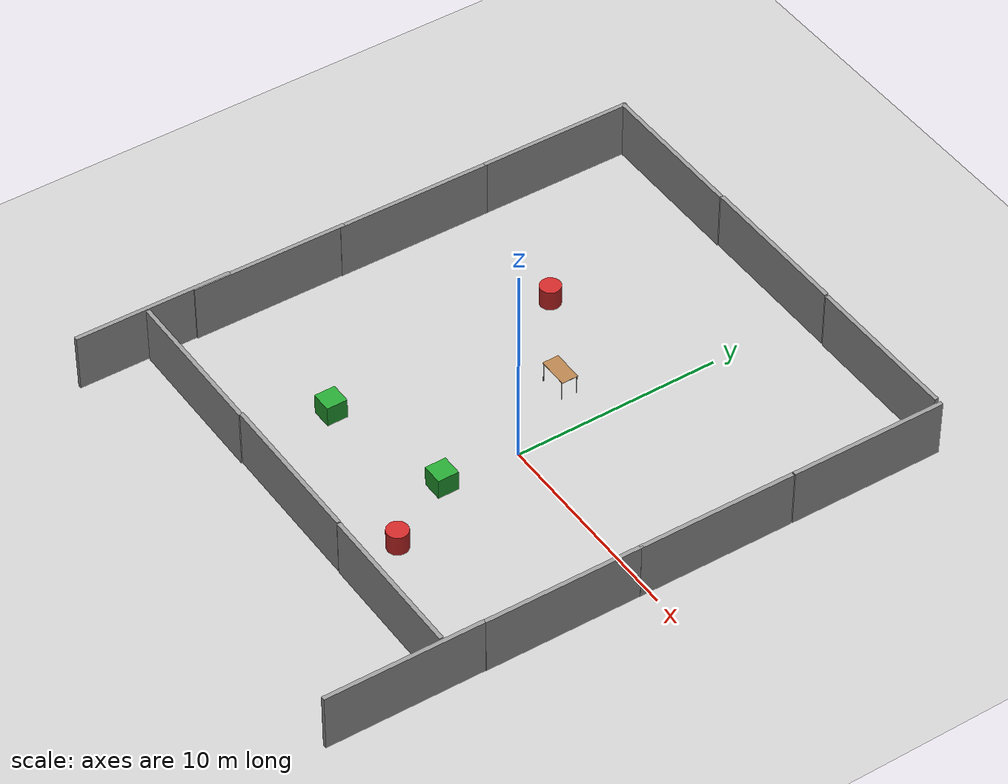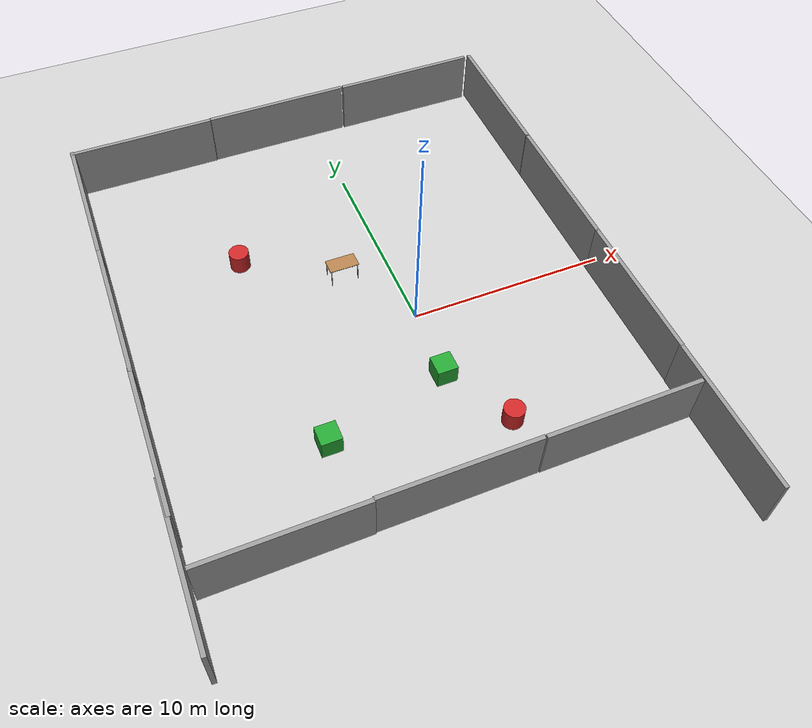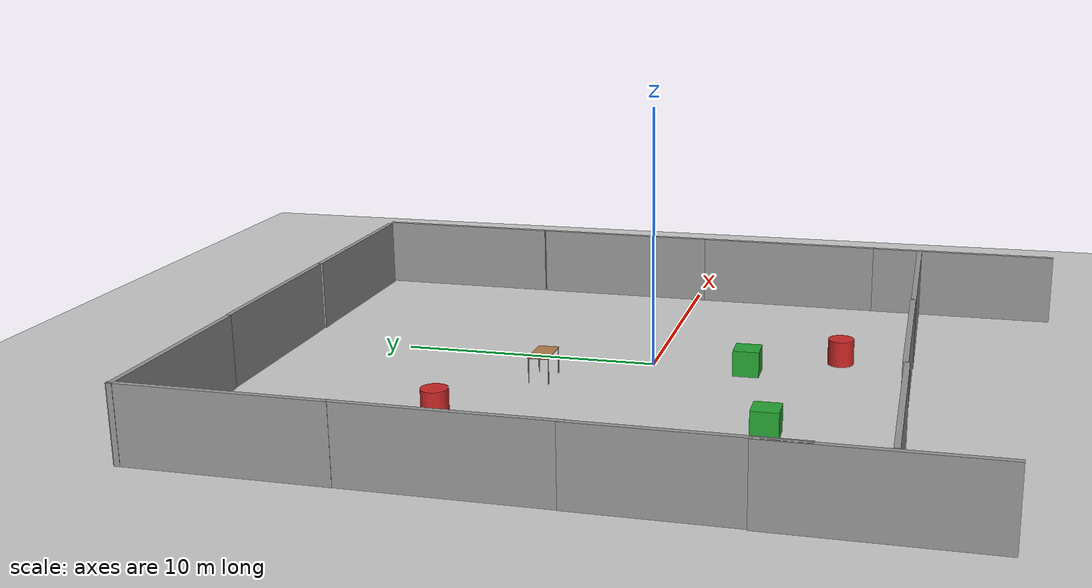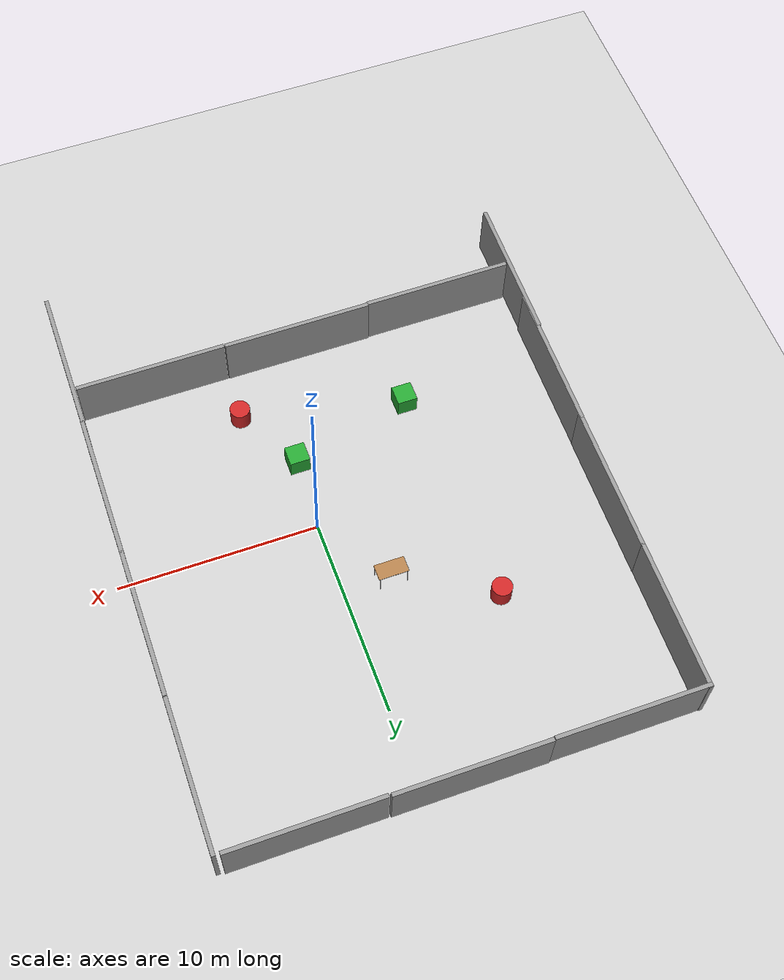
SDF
<sdf version="1.7">
 <world name="default">
  <light name="sun" type="directional">
   <pose>0 0 10 0 -0 0</pose>
   <diffuse>0.8 0.8 0.8 1</diffuse>
   <specular>0.2 0.2 0.2 1</specular>
   <attenuation>
    <range>1000</range>
    <constant>0.9</constant>
    <linear>0.01</linear>
    <quadratic>0.001</quadratic>
   </attenuation>
   <direction>-0.5 0.1 -0.9</direction>
   <spot><inner_angle>0</inner_angle><outer_angle>0</outer_angle><falloff>0</falloff></spot>
  </light>
  <model name="ground_plane">
   <static>1</static>
   <link name="link">
    <collision name="collision">
     <geometry><plane><normal>0 0 1</normal><size>100 100</size></plane></geometry>
     <surface><friction><ode><mu>100</mu><mu2>50</mu2></ode></friction></surface>
    </collision>
    <visual name="visual">
     <cast_shadows>0</cast_shadows>
     <geometry><plane><normal>0 0 1</normal><size>100 100</size></plane></geometry>
     <material>
      <script><uri>file://media/materials/scripts/gazebo.material</uri><name>Gazebo/Grey</name></script>
     </material>
    </visual>
   </link>
  </model>
  <gravity>0 0 -9.8</gravity>
  <magnetic_field>6e-06 2.3e-05 -4.2e-05</magnetic_field>
  <atmosphere type="adiabatic"/>
  <physics type="ode">
   <max_step_size>0.001</max_step_size>
   <real_time_factor>1</real_time_factor>
   <real_time_update_rate>1000</real_time_update_rate>
  </physics>
  <scene><ambient>0.4 0.4 0.4 1</ambient><background>0.7 0.7 0.7 1</background><shadows>1</shadows></scene>
  <model name="unit_box">
   <pose>-6.35708 -5.20828 0.499995 0 1e-05 0</pose>
   <link name="link">
    <inertial>
     <mass>1</mass>
     <inertia>
      <ixx>0.166667</ixx>
      <ixy>0</ixy>
      <ixz>0</ixz>
      <iyy>0.166667</iyy>
      <iyz>0</iyz>
      <izz>0.166667</izz>
     </inertia>
    </inertial>
    <collision name="collision"><geometry><box><size>1 1 1</size></box></geometry></collision>
    <visual name="visual">
     <geometry><box><size>1 1 1</size></box></geometry>
     <material>
      <script><name>Gazebo/Green</name><uri>file://media/materials/scripts/gazebo.material</uri></script>
     </material>
    </visual>
   </link>
  </model>
  <model name="unit_box_0">
   <pose>-0.213584 -3.67443 0.499995 0 1e-05 0</pose>
   <link name="link">
    <inertial>
     <mass>1</mass>
     <inertia>
      <ixx>0.166667</ixx>
      <ixy>0</ixy>
      <ixz>0</ixz>
      <iyy>0.166667</iyy>
      <iyz>0</iyz>
      <izz>0.166667</izz>
     </inertia>
    </inertial>
    <collision name="collision"><geometry><box><size>1 1 1</size></box></geometry></collision>
    <visual name="visual">
     <geometry><box><size>1 1 1</size></box></geometry>
     <material>
      <script><name>Gazebo/Green</name><uri>file://media/materials/scripts/gazebo.material</uri></script>
     </material>
    </visual>
   </link>
  </model>
  <model name="unit_cylinder_0">
   <pose>1.64762 -7.05044 0.499996 3e-06 1e-06 -0</pose>
   <link name="link">
    <inertial>
     <mass>1</mass>
     <inertia><ixx>0.145833</ixx><ixy>0</ixy><ixz>0</ixz><iyy>0.145833</iyy><iyz>0</iyz><izz>0.125</izz></inertia>
    </inertial>
    <collision name="collision">
     <geometry><cylinder><radius>0.5</radius><length>1</length></cylinder></geometry>
    </collision>
    <visual name="visual">
     <geometry><cylinder><radius>0.5</radius><length>1</length></cylinder></geometry>
     <material>
      <script><name>Gazebo/Red</name><uri>file://media/materials/scripts/gazebo.material</uri></script>
     </material>
    </visual>
   </link>
  </model>
  <model name="unit_cylinder_1">
   <pose>-6.94915 6.32114 0.499996 3e-06 1e-06 -0</pose>
   <link name="link">
    <inertial>
     <mass>1</mass>
     <inertia><ixx>0.145833</ixx><ixy>0</ixy><ixz>0</ixz><iyy>0.145833</iyy><iyz>0</iyz><izz>0.125</izz></inertia>
    </inertial>
    <collision name="collision">
     <geometry><cylinder><radius>0.5</radius><length>1</length></cylinder></geometry>
    </collision>
    <visual name="visual">
     <geometry><cylinder><radius>0.5</radius><length>1</length></cylinder></geometry>
     <material>
      <script><name>Gazebo/Red</name><uri>file://media/materials/scripts/gazebo.material</uri></script>
     </material>
    </visual>
   </link>
  </model>
  <audio><device>default</device></audio>
  <spherical_coordinates>
   <surface_model>EARTH_WGS84</surface_model>
   <latitude_deg>0</latitude_deg>
   <longitude_deg>0</longitude_deg>
   <elevation>0</elevation>
   <heading_deg>0</heading_deg>
  </spherical_coordinates>
  <model name="grey_wall">
   <static>1</static>
   <link name="link">
    <pose>0 0 1.4 0 -0 0</pose>
    <collision name="collision"><geometry><box><size>7.5 0.2 2.8</size></box></geometry></collision>
    <visual name="visual">
     <cast_shadows>0</cast_shadows>
     <geometry><box><size>7.5 0.2 2.8</size></box></geometry>
     <material>
      <script>
       <uri>model://grey_wall/materials/scripts</uri>
       <uri>model://grey_wall/materials/textures</uri>
       <name>vrc/grey_wall</name>
      </script>
     </material>
    </visual>
   </link>
   <pose>-9.65686 14.5584 0 0 -0 0</pose>
  </model>
  <model name="grey_wall_clone">
   <static>1</static>
   <link name="link">
    <pose>0 0 1.4 0 -0 0</pose>
    <collision name="collision"><geometry><box><size>7.5 0.2 2.8</size></box></geometry></collision>
    <visual name="visual">
     <cast_shadows>0</cast_shadows>
     <geometry><box><size>7.5 0.2 2.8</size></box></geometry>
     <material>
      <script>
       <uri>model://grey_wall/materials/scripts</uri>
       <uri>model://grey_wall/materials/textures</uri>
       <name>vrc/grey_wall</name>
      </script>
     </material>
    </visual>
   </link>
   <pose>-2.12877 14.5947 0 0 -0 0</pose>
  </model>
  <model name="grey_wall_clone_0">
   <static>1</static>
   <link name="link">
    <pose>0 0 1.4 0 -0 0</pose>
    <collision name="collision"><geometry><box><size>7.5 0.2 2.8</size></box></geometry></collision>
    <visual name="visual">
     <cast_shadows>0</cast_shadows>
     <geometry><box><size>7.5 0.2 2.8</size></box></geometry>
     <material>
      <script>
       <uri>model://grey_wall/materials/scripts</uri>
       <uri>model://grey_wall/materials/textures</uri>
       <name>vrc/grey_wall</name>
      </script>
     </material>
    </visual>
   </link>
   <pose>5.4722 14.5623 0 0 -0 0</pose>
  </model>
  <model name="grey_wall_clone_3_clone">
   <static>1</static>
   <link name="link">
    <pose>0 0 1.4 0 -0 0</pose>
    <collision name="collision"><geometry><box><size>7.5 0.2 2.8</size></box></geometry></collision>
    <visual name="visual">
     <cast_shadows>0</cast_shadows>
     <geometry><box><size>7.5 0.2 2.8</size></box></geometry>
     <material>
      <script>
       <uri>model://grey_wall/materials/scripts</uri>
       <uri>model://grey_wall/materials/textures</uri>
       <name>vrc/grey_wall</name>
      </script>
     </material>
    </visual>
   </link>
   <pose>9.463 10.8499 0 0 -0 1.55823</pose>
  </model>
  <model name="grey_wall_clone_3_clone_0">
   <static>1</static>
   <link name="link">
    <pose>0 0 1.4 0 -0 0</pose>
    <collision name="collision"><geometry><box><size>7.5 0.2 2.8</size></box></geometry></collision>
    <visual name="visual">
     <cast_shadows>0</cast_shadows>
     <geometry><box><size>7.5 0.2 2.8</size></box></geometry>
     <material>
      <script>
       <uri>model://grey_wall/materials/scripts</uri>
       <uri>model://grey_wall/materials/textures</uri>
       <name>vrc/grey_wall</name>
      </script>
     </material>
    </visual>
   </link>
   <pose>9.36503 3.29862 0 0 -0 1.55823</pose>
  </model>
  <model name="grey_wall_clone_3_clone_1">
   <static>1</static>
   <link name="link">
    <pose>0 0 1.4 0 -0 0</pose>
    <collision name="collision"><geometry><box><size>7.5 0.2 2.8</size></box></geometry></collision>
    <visual name="visual">
     <cast_shadows>0</cast_shadows>
     <geometry><box><size>7.5 0.2 2.8</size></box></geometry>
     <material>
      <script>
       <uri>model://grey_wall/materials/scripts</uri>
       <uri>model://grey_wall/materials/textures</uri>
       <name>vrc/grey_wall</name>
      </script>
     </material>
    </visual>
   </link>
   <pose>9.26601 -4.08716 0 0 -0 1.55823</pose>
  </model>
  <model name="grey_wall_clone_3_clone_2">
   <static>1</static>
   <link name="link">
    <pose>0 0 1.4 0 -0 0</pose>
    <collision name="collision"><geometry><box><size>7.5 0.2 2.8</size></box></geometry></collision>
    <visual name="visual">
     <cast_shadows>0</cast_shadows>
     <geometry><box><size>7.5 0.2 2.8</size></box></geometry>
     <material>
      <script>
       <uri>model://grey_wall/materials/scripts</uri>
       <uri>model://grey_wall/materials/textures</uri>
       <name>vrc/grey_wall</name>
      </script>
     </material>
    </visual>
   </link>
   <pose>9.15069 -11.507 0 0 -0 1.55823</pose>
  </model>
  <model name="grey_wall_clone_1_clone_0">
   <static>1</static>
   <link name="link">
    <pose>0 0 1.4 0 -0 0</pose>
    <collision name="collision"><geometry><box><size>7.5 0.2 2.8</size></box></geometry></collision>
    <visual name="visual">
     <cast_shadows>0</cast_shadows>
     <geometry><box><size>7.5 0.2 2.8</size></box></geometry>
     <material>
      <script>
       <uri>model://grey_wall/materials/scripts</uri>
       <uri>model://grey_wall/materials/textures</uri>
       <name>vrc/grey_wall</name>
      </script>
     </material>
    </visual>
   </link>
   <pose>5.27008 -9.71945 0 0 -0 0</pose>
  </model>
  <model name="grey_wall_clone_1_clone_1">
   <static>1</static>
   <link name="link">
    <pose>0 0 1.4 0 -0 0</pose>
    <collision name="collision"><geometry><box><size>7.5 0.2 2.8</size></box></geometry></collision>
    <visual name="visual">
     <cast_shadows>0</cast_shadows>
     <geometry><box><size>7.5 0.2 2.8</size></box></geometry>
     <material>
      <script>
       <uri>model://grey_wall/materials/scripts</uri>
       <uri>model://grey_wall/materials/textures</uri>
       <name>vrc/grey_wall</name>
      </script>
     </material>
    </visual>
   </link>
   <pose>-2.28683 -9.69657 0 0 -0 0</pose>
  </model>
  <model name="grey_wall_clone_1_clone_2">
   <static>1</static>
   <link name="link">
    <pose>0 0 1.4 0 -0 0</pose>
    <collision name="collision"><geometry><box><size>7.5 0.2 2.8</size></box></geometry></collision>
    <visual name="visual">
     <cast_shadows>0</cast_shadows>
     <geometry><box><size>7.5 0.2 2.8</size></box></geometry>
     <material>
      <script>
       <uri>model://grey_wall/materials/scripts</uri>
       <uri>model://grey_wall/materials/textures</uri>
       <name>vrc/grey_wall</name>
      </script>
     </material>
    </visual>
   </link>
   <pose>-9.75002 -9.74972 0 0 -0 0</pose>
  </model>
  <model name="grey_wall_clone_3_clone_1_clone">
   <static>1</static>
   <link name="link">
    <pose>0 0 1.4 0 -0 0</pose>
    <collision name="collision"><geometry><box><size>7.5 0.2 2.8</size></box></geometry></collision>
    <visual name="visual">
     <cast_shadows>0</cast_shadows>
     <geometry><box><size>7.5 0.2 2.8</size></box></geometry>
     <material>
      <script>
       <uri>model://grey_wall/materials/scripts</uri>
       <uri>model://grey_wall/materials/textures</uri>
       <name>vrc/grey_wall</name>
      </script>
     </material>
    </visual>
   </link>
   <pose>-13.3409 10.9406 0 0 -0 1.55823</pose>
  </model>
  <model name="grey_wall_clone_3_clone_1_clone_0">
   <static>1</static>
   <link name="link">
    <pose>0 0 1.4 0 -0 0</pose>
    <collision name="collision"><geometry><box><size>7.5 0.2 2.8</size></box></geometry></collision>
    <visual name="visual">
     <cast_shadows>0</cast_shadows>
     <geometry><box><size>7.5 0.2 2.8</size></box></geometry>
     <material>
      <script>
       <uri>model://grey_wall/materials/scripts</uri>
       <uri>model://grey_wall/materials/textures</uri>
       <name>vrc/grey_wall</name>
      </script>
     </material>
    </visual>
   </link>
   <pose>-13.4262 3.51583 0 0 -0 1.55823</pose>
  </model>
  <model name="grey_wall_clone_3_clone_1_clone_1">
   <static>1</static>
   <link name="link">
    <pose>0 0 1.4 0 -0 0</pose>
    <collision name="collision"><geometry><box><size>7.5 0.2 2.8</size></box></geometry></collision>
    <visual name="visual">
     <cast_shadows>0</cast_shadows>
     <geometry><box><size>7.5 0.2 2.8</size></box></geometry>
     <material>
      <script>
       <uri>model://grey_wall/materials/scripts</uri>
       <uri>model://grey_wall/materials/textures</uri>
       <name>vrc/grey_wall</name>
      </script>
     </material>
    </visual>
   </link>
   <pose>-13.5339 -3.7358 0 0 -0 1.55823</pose>
  </model>
  <model name="grey_wall_clone_3_clone_1_clone_2">
   <static>1</static>
   <link name="link">
    <pose>0 0 1.4 0 -0 0</pose>
    <collision name="collision"><geometry><box><size>7.5 0.2 2.8</size></box></geometry></collision>
    <visual name="visual">
     <cast_shadows>0</cast_shadows>
     <geometry><box><size>7.5 0.2 2.8</size></box></geometry>
     <material>
      <script>
       <uri>model://grey_wall/materials/scripts</uri>
       <uri>model://grey_wall/materials/textures</uri>
       <name>vrc/grey_wall</name>
      </script>
     </material>
    </visual>
   </link>
   <pose>-13.6645 -9.40334 0 0 -0 1.55823</pose>
  </model>
  <model name="table">
   <static>1</static>
   <link name="link">
    <collision name="surface">
     <pose>0 0 1 0 -0 0</pose>
     <geometry><box><size>1.5 0.8 0.03</size></box></geometry>
     <surface><friction><ode><mu>0.6</mu><mu2>0.6</mu2></ode></friction></surface>
    </collision>
    <visual name="visual1">
     <pose>0 0 1 0 -0 0</pose>
     <geometry><box><size>1.5 0.8 0.03</size></box></geometry>
     <material>
      <script><uri>file://media/materials/scripts/gazebo.material</uri><name>Gazebo/Wood</name></script>
     </material>
    </visual>
    <collision name="front_left_leg">
     <pose>0.68 0.38 0.5 0 -0 0</pose>
     <geometry><cylinder><radius>0.02</radius><length>1</length></cylinder></geometry>
    </collision>
    <visual name="front_left_leg">
     <pose>0.68 0.38 0.5 0 -0 0</pose>
     <geometry><cylinder><radius>0.02</radius><length>1</length></cylinder></geometry>
     <material>
      <script><uri>file://media/materials/scripts/gazebo.material</uri><name>Gazebo/Grey</name></script>
     </material>
    </visual>
    <collision name="front_right_leg">
     <pose>0.68 -0.38 0.5 0 -0 0</pose>
     <geometry><cylinder><radius>0.02</radius><length>1</length></cylinder></geometry>
    </collision>
    <visual name="front_right_leg">
     <pose>0.68 -0.38 0.5 0 -0 0</pose>
     <geometry><cylinder><radius>0.02</radius><length>1</length></cylinder></geometry>
     <material>
      <script><uri>file://media/materials/scripts/gazebo.material</uri><name>Gazebo/Grey</name></script>
     </material>
    </visual>
    <collision name="back_right_leg">
     <pose>-0.68 -0.38 0.5 0 -0 0</pose>
     <geometry><cylinder><radius>0.02</radius><length>1</length></cylinder></geometry>
    </collision>
    <visual name="back_right_leg">
     <pose>-0.68 -0.38 0.5 0 -0 0</pose>
     <geometry><cylinder><radius>0.02</radius><length>1</length></cylinder></geometry>
     <material>
      <script><uri>file://media/materials/scripts/gazebo.material</uri><name>Gazebo/Grey</name></script>
     </material>
    </visual>
    <collision name="back_left_leg">
     <pose>-0.68 0.38 0.5 0 -0 0</pose>
     <geometry><cylinder><radius>0.02</radius><length>1</length></cylinder></geometry>
    </collision>
    <visual name="back_left_leg">
     <pose>-0.68 0.38 0.5 0 -0 0</pose>
     <geometry><cylinder><radius>0.02</radius><length>1</length></cylinder></geometry>
     <material>
      <script><uri>file://media/materials/scripts/gazebo.material</uri><name>Gazebo/Grey</name></script>
     </material>
    </visual>
   </link>
   <pose>-2.40009 3.72191 0 0 -0 0</pose>
  </model>
 </world>
</sdf>
